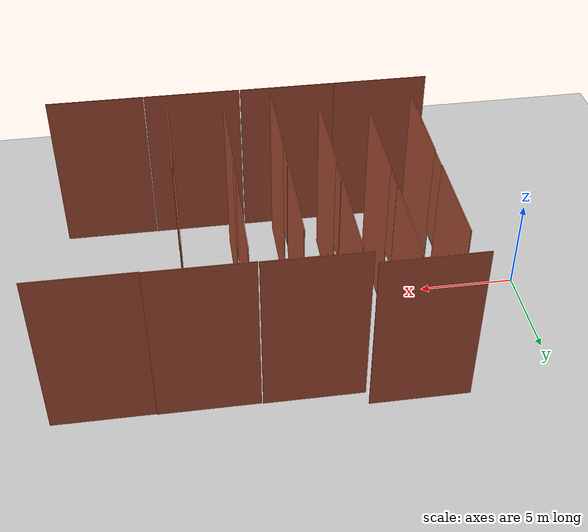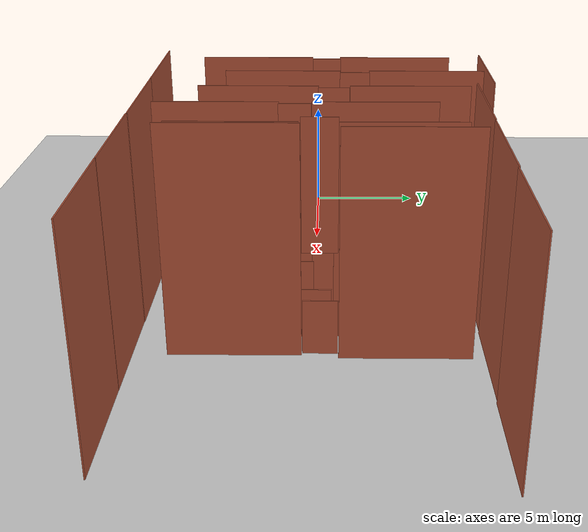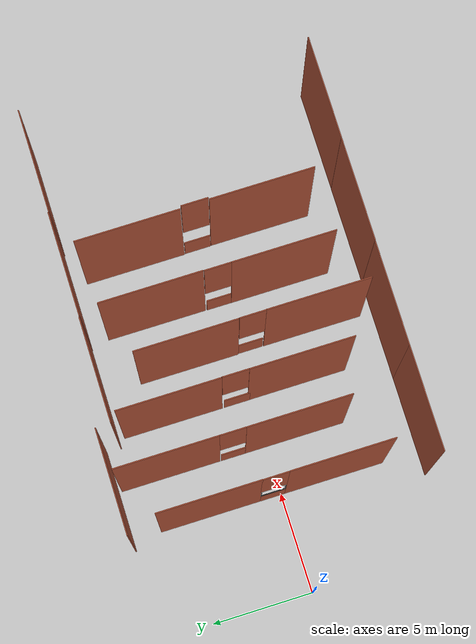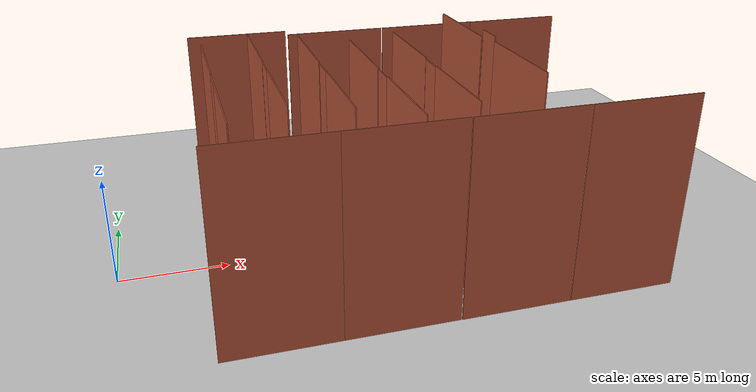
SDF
<sdf version="1.7">
 <world name="default">
  <light name="sun" type="directional">
   <pose>0 0 10 0 -0 0</pose>
   <diffuse>0.8 0.8 0.8 1</diffuse>
   <specular>0.2 0.2 0.2 1</specular>
   <attenuation>
    <range>1000</range>
    <constant>0.9</constant>
    <linear>0.01</linear>
    <quadratic>0.001</quadratic>
   </attenuation>
   <direction>-0.5 0.1 -0.9</direction>
   <spot><inner_angle>0</inner_angle><outer_angle>0</outer_angle><falloff>0</falloff></spot>
  </light>
  <model name="ground_plane">
   <static>1</static>
   <link name="link">
    <collision name="collision">
     <geometry><plane><normal>0 0 1</normal><size>100 100</size></plane></geometry>
     <surface><friction><ode><mu>100</mu><mu2>50</mu2></ode></friction></surface>
    </collision>
    <visual name="visual">
     <cast_shadows>0</cast_shadows>
     <geometry><plane><normal>0 0 1</normal><size>100 100</size></plane></geometry>
     <material>
      <script><uri>file://media/materials/scripts/gazebo.material</uri><name>Gazebo/Grey</name></script>
     </material>
    </visual>
   </link>
  </model>
  <gravity>0 0 -9.8</gravity>
  <magnetic_field>6e-06 2.3e-05 -4.2e-05</magnetic_field>
  <atmosphere type="adiabatic"/>
  <physics name="default_physics" default="0" type="ode">
   <max_step_size>0.004</max_step_size>
   <real_time_factor>1</real_time_factor>
   <real_time_update_rate>250</real_time_update_rate>
  </physics>
  <scene><ambient>0.4 0.4 0.4 1</ambient><background>0.7 0.7 0.7 1</background><shadows>1</shadows></scene>
  <spherical_coordinates>
   <surface_model>EARTH_WGS84</surface_model>
   <latitude_deg>0</latitude_deg>
   <longitude_deg>0</longitude_deg>
   <elevation>0</elevation>
   <heading_deg>0</heading_deg>
  </spherical_coordinates>
  <model name="left">
   <static>1</static>
   <link name="box">
    <pose>5 -0.15 3 0 -0 0</pose>
    <collision name="collision"><geometry><box><size>0.05 0.05 1.8</size></box></geometry></collision>
    <visual name="visual">
     <geometry><box><size>0.05 0.05 1.8</size></box></geometry>
     <material>
      <script><uri>file://media/materials/scripts/gazebo.material</uri><name>Gazebo/Black</name></script>
     </material>
    </visual>
   </link>
  </model>
  <model name="bottom">
   <static>1</static>
   <link name="box">
    <pose>5 0.45 2.1 0 -0 1.57</pose>
    <collision name="collision"><geometry><box><size>1.2 0.05 0.05</size></box></geometry></collision>
    <visual name="visual">
     <geometry><box><size>1.2 0.05 0.05</size></box></geometry>
     <material>
      <script><uri>file://media/materials/scripts/gazebo.material</uri><name>Gazebo/Black</name></script>
     </material>
    </visual>
   </link>
  </model>
  <model name="right">
   <static>1</static>
   <link name="box">
    <pose>5 1.05 3 0 -0 0</pose>
    <collision name="collision"><geometry><box><size>0.05 0.05 1.8</size></box></geometry></collision>
    <visual name="visual">
     <geometry><box><size>0.05 0.05 1.8</size></box></geometry>
     <material>
      <script><uri>file://media/materials/scripts/gazebo.material</uri><name>Gazebo/Black</name></script>
     </material>
    </visual>
   </link>
  </model>
  <model name="top">
   <static>1</static>
   <link name="box">
    <pose>5 0.45 3.9 0 -0 1.57</pose>
    <collision name="collision"><geometry><box><size>1.2 0.05 0.05</size></box></geometry></collision>
    <visual name="visual">
     <geometry><box><size>1.2 0.05 0.05</size></box></geometry>
     <material>
      <script><uri>file://media/materials/scripts/gazebo.material</uri><name>Gazebo/Black</name></script>
     </material>
    </visual>
   </link>
  </model>
  <model name="wall_right">
   <static>1</static>
   <link name="box">
    <pose>5 -2.68 4.5 0 -0 0</pose>
    <collision name="collision"><geometry><box><size>0.05 5 9</size></box></geometry></collision>
    <visual name="visual">
     <geometry><box><size>0.05 5 9</size></box></geometry>
     <material>
      <script><uri>file://media/materials/scripts/gazebo.material</uri><name>Gazebo/Bricks</name></script>
     </material>
    </visual>
   </link>
  </model>
  <model name="wall_left">
   <static>1</static>
   <link name="box">
    <pose>5 3.57 4.5 0 -0 0</pose>
    <collision name="collision"><geometry><box><size>0.05 5 9</size></box></geometry></collision>
    <visual name="visual">
     <geometry><box><size>0.05 5 9</size></box></geometry>
     <material>
      <script><uri>file://media/materials/scripts/gazebo.material</uri><name>Gazebo/Bricks</name></script>
     </material>
    </visual>
   </link>
  </model>
  <model name="wall_top">
   <static>1</static>
   <link name="box">
    <pose>5 0.45 6.43 0 -0 0</pose>
    <collision name="collision"><geometry><box><size>0.05 1.3 5</size></box></geometry></collision>
    <visual name="visual">
     <geometry><box><size>0.05 1.3 5</size></box></geometry>
     <material>
      <script><uri>file://media/materials/scripts/gazebo.material</uri><name>Gazebo/Bricks</name></script>
     </material>
    </visual>
   </link>
  </model>
  <model name="wall_bottom">
   <static>1</static>
   <link name="box">
    <pose>5 0.45 1 0 -0 0</pose>
    <collision name="collision"><geometry><box><size>0.05 1.3 2.2</size></box></geometry></collision>
    <visual name="visual">
     <geometry><box><size>0.05 1.3 2.2</size></box></geometry>
     <material>
      <script><uri>file://media/materials/scripts/gazebo.material</uri><name>Gazebo/Bricks</name></script>
     </material>
    </visual>
   </link>
  </model>
  <model name="wall_right_clone">
   <static>1</static>
   <link name="box">
    <pose>5 -2.68 4.5 0 -0 0</pose>
    <collision name="collision"><geometry><box><size>0.05 5 9</size></box></geometry></collision>
    <visual name="visual">
     <geometry><box><size>0.05 5 9</size></box></geometry>
     <material>
      <script><uri>file://media/materials/scripts/gazebo.material</uri><name>Gazebo/Bricks</name></script>
     </material>
    </visual>
   </link>
   <pose>2.4473 1.22764 0 0 -0 0</pose>
  </model>
  <model name="wall_top_clone">
   <static>1</static>
   <link name="box">
    <pose>5 0.45 6.43 0 -0 0</pose>
    <collision name="collision"><geometry><box><size>0.05 1.3 5</size></box></geometry></collision>
    <visual name="visual">
     <geometry><box><size>0.05 1.3 5</size></box></geometry>
     <material>
      <script><uri>file://media/materials/scripts/gazebo.material</uri><name>Gazebo/Bricks</name></script>
     </material>
    </visual>
   </link>
   <pose>2.45653 1.23439 0 0 -0 0</pose>
  </model>
  <model name="wall_bottom_clone">
   <static>1</static>
   <link name="box">
    <pose>5 0.45 1 0 -0 0</pose>
    <collision name="collision"><geometry><box><size>0.05 1.3 2.2</size></box></geometry></collision>
    <visual name="visual">
     <geometry><box><size>0.05 1.3 2.2</size></box></geometry>
     <material>
      <script><uri>file://media/materials/scripts/gazebo.material</uri><name>Gazebo/Bricks</name></script>
     </material>
    </visual>
   </link>
   <pose>2.44985 1.16515 0 0 -0 0</pose>
  </model>
  <model name="wall_left_clone">
   <static>1</static>
   <link name="box">
    <pose>5 3.57 4.5 0 -0 0</pose>
    <collision name="collision"><geometry><box><size>0.05 5 9</size></box></geometry></collision>
    <visual name="visual">
     <geometry><box><size>0.05 5 9</size></box></geometry>
     <material>
      <script><uri>file://media/materials/scripts/gazebo.material</uri><name>Gazebo/Bricks</name></script>
     </material>
    </visual>
   </link>
   <pose>2.44854 1.24676 0 0 -0 0</pose>
  </model>
  <model name="wall_right_clone_clone">
   <static>1</static>
   <link name="box">
    <pose>5 -2.68 4.5 0 -0 0</pose>
    <collision name="collision"><geometry><box><size>0.05 5 9</size></box></geometry></collision>
    <visual name="visual">
     <geometry><box><size>0.05 5 9</size></box></geometry>
     <material>
      <script><uri>file://media/materials/scripts/gazebo.material</uri><name>Gazebo/Bricks</name></script>
     </material>
    </visual>
   </link>
   <pose>4.90832 0.318839 0 0 -0 0</pose>
  </model>
  <model name="wall_top_clone_clone">
   <static>1</static>
   <link name="box">
    <pose>5 0.45 6.43 0 -0 0</pose>
    <collision name="collision"><geometry><box><size>0.05 1.3 5</size></box></geometry></collision>
    <visual name="visual">
     <geometry><box><size>0.05 1.3 5</size></box></geometry>
     <material>
      <script><uri>file://media/materials/scripts/gazebo.material</uri><name>Gazebo/Bricks</name></script>
     </material>
    </visual>
   </link>
   <pose>4.92414 0.318711 0 0 -0 0</pose>
  </model>
  <model name="wall_bottom_clone_clone">
   <static>1</static>
   <link name="box">
    <pose>5 0.45 1 0 -0 0</pose>
    <collision name="collision"><geometry><box><size>0.05 1.3 2.2</size></box></geometry></collision>
    <visual name="visual">
     <geometry><box><size>0.05 1.3 2.2</size></box></geometry>
     <material>
      <script><uri>file://media/materials/scripts/gazebo.material</uri><name>Gazebo/Bricks</name></script>
     </material>
    </visual>
   </link>
   <pose>4.9077 0.239035 0 0 -0 0</pose>
  </model>
  <model name="wall_left_clone_clone">
   <static>1</static>
   <link name="box">
    <pose>5 3.57 4.5 0 -0 0</pose>
    <collision name="collision"><geometry><box><size>0.05 5 9</size></box></geometry></collision>
    <visual name="visual">
     <geometry><box><size>0.05 5 9</size></box></geometry>
     <material>
      <script><uri>file://media/materials/scripts/gazebo.material</uri><name>Gazebo/Bricks</name></script>
     </material>
    </visual>
   </link>
   <pose>4.90173 0.368202 0 0 -0 0</pose>
  </model>
  <model name="wall_right_clone_clone_clone">
   <static>1</static>
   <link name="box">
    <pose>5 -2.68 4.5 0 -0 0</pose>
    <collision name="collision"><geometry><box><size>0.05 5 9</size></box></geometry></collision>
    <visual name="visual">
     <geometry><box><size>0.05 5 9</size></box></geometry>
     <material>
      <script><uri>file://media/materials/scripts/gazebo.material</uri><name>Gazebo/Bricks</name></script>
     </material>
    </visual>
   </link>
   <pose>7.24701 -1.22601 0 0 -0 0</pose>
  </model>
  <model name="wall_top_clone_clone_clone">
   <static>1</static>
   <link name="box">
    <pose>5 0.45 6.43 0 -0 0</pose>
    <collision name="collision"><geometry><box><size>0.05 1.3 5</size></box></geometry></collision>
    <visual name="visual">
     <geometry><box><size>0.05 1.3 5</size></box></geometry>
     <material>
      <script><uri>file://media/materials/scripts/gazebo.material</uri><name>Gazebo/Bricks</name></script>
     </material>
    </visual>
   </link>
   <pose>7.25207 -1.2373 0 0 -0 0</pose>
  </model>
  <model name="wall_bottom_clone_clone_clone">
   <static>1</static>
   <link name="box">
    <pose>5 0.45 1 0 -0 0</pose>
    <collision name="collision"><geometry><box><size>0.05 1.3 2.2</size></box></geometry></collision>
    <visual name="visual">
     <geometry><box><size>0.05 1.3 2.2</size></box></geometry>
     <material>
      <script><uri>file://media/materials/scripts/gazebo.material</uri><name>Gazebo/Bricks</name></script>
     </material>
    </visual>
   </link>
   <pose>7.2609 -1.16053 0 0 -0 0</pose>
  </model>
  <model name="wall_left_clone_clone_clone">
   <static>1</static>
   <link name="box">
    <pose>5 3.57 4.5 0 -0 0</pose>
    <collision name="collision"><geometry><box><size>0.05 5 9</size></box></geometry></collision>
    <visual name="visual">
     <geometry><box><size>0.05 5 9</size></box></geometry>
     <material>
      <script><uri>file://media/materials/scripts/gazebo.material</uri><name>Gazebo/Bricks</name></script>
     </material>
    </visual>
   </link>
   <pose>7.22697 -1.18027 0 0 -0 0</pose>
  </model>
  <model name="wall_right_clone_clone_clone_clone">
   <static>1</static>
   <link name="box">
    <pose>5 -2.68 4.5 0 -0 0</pose>
    <collision name="collision"><geometry><box><size>0.05 5 9</size></box></geometry></collision>
    <visual name="visual">
     <geometry><box><size>0.05 5 9</size></box></geometry>
     <material>
      <script><uri>file://media/materials/scripts/gazebo.material</uri><name>Gazebo/Bricks</name></script>
     </material>
    </visual>
   </link>
   <pose>9.79678 -0.3808 0 0 -0 0</pose>
  </model>
  <model name="wall_top_clone_clone_clone_clone">
   <static>1</static>
   <link name="box">
    <pose>5 0.45 6.43 0 -0 0</pose>
    <collision name="collision"><geometry><box><size>0.05 1.3 5</size></box></geometry></collision>
    <visual name="visual">
     <geometry><box><size>0.05 1.3 5</size></box></geometry>
     <material>
      <script><uri>file://media/materials/scripts/gazebo.material</uri><name>Gazebo/Bricks</name></script>
     </material>
    </visual>
   </link>
   <pose>9.81005 -0.366805 0 0 -0 0</pose>
  </model>
  <model name="wall_bottom_clone_clone_clone_clone">
   <static>1</static>
   <link name="box">
    <pose>5 0.45 1 0 -0 0</pose>
    <collision name="collision"><geometry><box><size>0.05 1.3 2.2</size></box></geometry></collision>
    <visual name="visual">
     <geometry><box><size>0.05 1.3 2.2</size></box></geometry>
     <material>
      <script><uri>file://media/materials/scripts/gazebo.material</uri><name>Gazebo/Bricks</name></script>
     </material>
    </visual>
   </link>
   <pose>9.8076 -0.410722 0 0 -0 0</pose>
  </model>
  <model name="wall_left_clone_clone_clone_clone">
   <static>1</static>
   <link name="box">
    <pose>5 3.57 4.5 0 -0 0</pose>
    <collision name="collision"><geometry><box><size>0.05 5 9</size></box></geometry></collision>
    <visual name="visual">
     <geometry><box><size>0.05 5 9</size></box></geometry>
     <material>
      <script><uri>file://media/materials/scripts/gazebo.material</uri><name>Gazebo/Bricks</name></script>
     </material>
    </visual>
   </link>
   <pose>9.81306 -0.308195 0 0 -0 0</pose>
  </model>
  <model name="wall_right_clone_clone_clone_clone_0">
   <static>1</static>
   <link name="box">
    <pose>5 -2.68 4.5 0 -0 0</pose>
    <collision name="collision"><geometry><box><size>0.05 5 9</size></box></geometry></collision>
    <visual name="visual">
     <geometry><box><size>0.05 5 9</size></box></geometry>
     <material>
      <script><uri>file://media/materials/scripts/gazebo.material</uri><name>Gazebo/Bricks</name></script>
     </material>
    </visual>
   </link>
   <pose>8.98667 -2.01184 0 0 0 -1.57648</pose>
  </model>
  <model name="wall_right_clone_clone_clone_clone_0_clone">
   <static>1</static>
   <link name="box">
    <pose>5 -2.68 4.5 0 -0 0</pose>
    <collision name="collision"><geometry><box><size>0.05 5 9</size></box></geometry></collision>
    <visual name="visual">
     <geometry><box><size>0.05 5 9</size></box></geometry>
     <material>
      <script><uri>file://media/materials/scripts/gazebo.material</uri><name>Gazebo/Bricks</name></script>
     </material>
    </visual>
   </link>
   <pose>13.9775 -2.04049 0 0 0 -1.57648</pose>
  </model>
  <model name="wall_right_clone_clone_clone_clone_0_clone_0">
   <static>1</static>
   <link name="box">
    <pose>5 -2.68 4.5 0 -0 0</pose>
    <collision name="collision"><geometry><box><size>0.05 5 9</size></box></geometry></collision>
    <visual name="visual">
     <geometry><box><size>0.05 5 9</size></box></geometry>
     <material>
      <script><uri>file://media/materials/scripts/gazebo.material</uri><name>Gazebo/Bricks</name></script>
     </material>
    </visual>
   </link>
   <pose>9.64585 12.4723 0 0 0 -1.57648</pose>
  </model>
  <model name="wall_right_clone_clone_clone_clone_0_clone_1">
   <static>1</static>
   <link name="box">
    <pose>5 -2.68 4.5 0 -0 0</pose>
    <collision name="collision"><geometry><box><size>0.05 5 9</size></box></geometry></collision>
    <visual name="visual">
     <geometry><box><size>0.05 5 9</size></box></geometry>
     <material>
      <script><uri>file://media/materials/scripts/gazebo.material</uri><name>Gazebo/Bricks</name></script>
     </material>
    </visual>
   </link>
   <pose>14.6537 11.7114 0 0 0 -1.57648</pose>
  </model>
  <model name="wall_right_clone_clone_clone_clone_0_clone_2">
   <static>1</static>
   <link name="box">
    <pose>5 -2.68 4.5 0 -0 0</pose>
    <collision name="collision"><geometry><box><size>0.05 5 9</size></box></geometry></collision>
    <visual name="visual">
     <geometry><box><size>0.05 5 9</size></box></geometry>
     <material>
      <script><uri>file://media/materials/scripts/gazebo.material</uri><name>Gazebo/Bricks</name></script>
     </material>
    </visual>
   </link>
   <pose>19.7084 11.6572 0 0 0 -1.57648</pose>
  </model>
  <model name="wall_right_clone_clone_clone_clone_0_clone_3">
   <static>1</static>
   <link name="box">
    <pose>5 -2.68 4.5 0 -0 0</pose>
    <collision name="collision"><geometry><box><size>0.05 5 9</size></box></geometry></collision>
    <visual name="visual">
     <geometry><box><size>0.05 5 9</size></box></geometry>
     <material>
      <script><uri>file://media/materials/scripts/gazebo.material</uri><name>Gazebo/Bricks</name></script>
     </material>
    </visual>
   </link>
   <pose>24.7152 11.5915 0 0 0 -1.57648</pose>
  </model>
  <model name="wall_right_clone_clone_clone_clone_0_clone_4">
   <static>1</static>
   <link name="box">
    <pose>5 -2.68 4.5 0 -0 0</pose>
    <collision name="collision"><geometry><box><size>0.05 5 9</size></box></geometry></collision>
    <visual name="visual">
     <geometry><box><size>0.05 5 9</size></box></geometry>
     <material>
      <script><uri>file://media/materials/scripts/gazebo.material</uri><name>Gazebo/Bricks</name></script>
     </material>
    </visual>
   </link>
   <pose>19.0223 -2.08642 0 0 0 -1.57648</pose>
  </model>
  <model name="wall_right_clone_clone_clone_clone_0_clone_5">
   <static>1</static>
   <link name="box">
    <pose>5 -2.68 4.5 0 -0 0</pose>
    <collision name="collision"><geometry><box><size>0.05 5 9</size></box></geometry></collision>
    <visual name="visual">
     <geometry><box><size>0.05 5 9</size></box></geometry>
     <material>
      <script><uri>file://media/materials/scripts/gazebo.material</uri><name>Gazebo/Bricks</name></script>
     </material>
    </visual>
   </link>
   <pose>24.0564 -2.11917 0 0 0 -1.57648</pose>
  </model>
  <model name="wall_right_clone_clone_clone_clone_clone">
   <static>1</static>
   <link name="box">
    <pose>5 -2.68 4.5 0 -0 0</pose>
    <collision name="collision"><geometry><box><size>0.05 5 9</size></box></geometry></collision>
    <visual name="visual">
     <geometry><box><size>0.05 5 9</size></box></geometry>
     <material>
      <script><uri>file://media/materials/scripts/gazebo.material</uri><name>Gazebo/Bricks</name></script>
     </material>
    </visual>
   </link>
   <pose>12.6751 -0.235365 0.858075 0 -0 0</pose>
  </model>
  <model name="wall_top_clone_clone_clone_clone_clone">
   <static>1</static>
   <link name="box">
    <pose>5 0.45 6.43 0 -0 0</pose>
    <collision name="collision"><geometry><box><size>0.05 1.3 5</size></box></geometry></collision>
    <visual name="visual">
     <geometry><box><size>0.05 1.3 5</size></box></geometry>
     <material>
      <script><uri>file://media/materials/scripts/gazebo.material</uri><name>Gazebo/Bricks</name></script>
     </material>
    </visual>
   </link>
   <pose>12.7007 -0.19182 1.14699 0 -0 0</pose>
  </model>
  <model name="wall_bottom_clone_clone_clone_clone_clone">
   <static>1</static>
   <link name="box">
    <pose>5 0.45 1 0 -0 0</pose>
    <collision name="collision"><geometry><box><size>0.05 1.3 2.2</size></box></geometry></collision>
    <visual name="visual">
     <geometry><box><size>0.05 1.3 2.2</size></box></geometry>
     <material>
      <script><uri>file://media/materials/scripts/gazebo.material</uri><name>Gazebo/Bricks</name></script>
     </material>
    </visual>
   </link>
   <pose>12.6431 -0.184732 1.02579 0 -0 0</pose>
  </model>
  <model name="wall_left_clone_clone_clone_clone_clone">
   <static>1</static>
   <link name="box">
    <pose>5 3.57 4.5 0 -0 0</pose>
    <collision name="collision"><geometry><box><size>0.05 5 9</size></box></geometry></collision>
    <visual name="visual">
     <geometry><box><size>0.05 5 9</size></box></geometry>
     <material>
      <script><uri>file://media/materials/scripts/gazebo.material</uri><name>Gazebo/Bricks</name></script>
     </material>
    </visual>
   </link>
   <pose>12.6617 -0.117562 0.732153 0 -0 0</pose>
  </model>
 </world>
</sdf>
